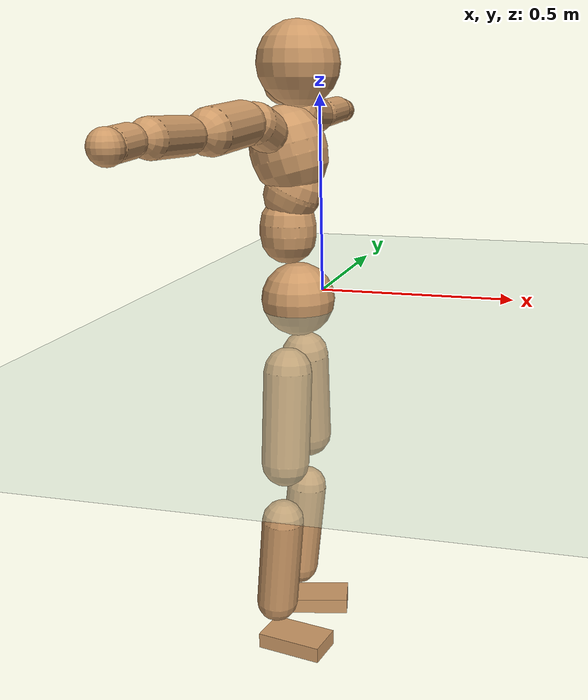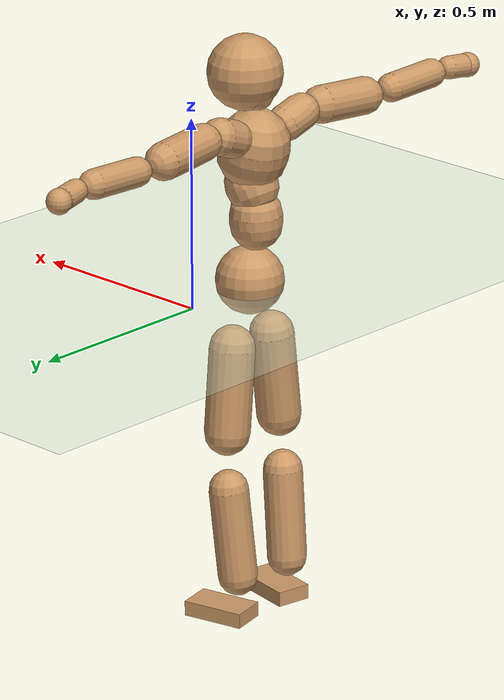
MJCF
<mujoco model="humanoid">
  <compiler coordinate="local"/>
  <default>
    <joint damping="0.0" armature="0.01" stiffness="0.0" limited="true"/>
    <geom conaffinity="1" condim="3" contype="7" margin="0.001" rgba="0.8 0.6 .4 1"/>
  </default>
  <asset>
    <texture type="skybox" builtin="gradient" rgb1=".4 .5 .6" rgb2="0 0 0" width="100" height="100"/>
    <texture builtin="flat" height="1278" mark="cross" markrgb="1 1 1" name="texgeom" random="0.01" rgb1="0.8 0.6 0.4" rgb2="0.8 0.6 0.4" type="cube" width="127"/>
    <texture builtin="checker" height="100" name="texplane" rgb1="0 0 0" rgb2="0.8 0.8 0.8" type="2d" width="100"/>
    <material name="MatPlane" reflectance="0.5" shininess="1" specular="1" texrepeat="60 60" texture="texplane"/>
    <material name="geom" texture="texgeom" texuniform="true"/>
  </asset>
  <worldbody>
    <light cutoff="100" diffuse="1 1 1" dir="-0 0 -1.3" directional="true" exponent="1" pos="0 0 1.3" specular=".1 .1 .1"/>
    <geom conaffinity="1" condim="3" name="floor" pos="0 0 0" rgba="0.8 0.9 0.8 1" size="100 100 .2" type="plane" material="MatPlane"/>
    <body name="Pelvis" pos="-0.0014 -0.2076 0.0245">
      <freejoint name="Pelvis"/>
      <geom type="sphere" contype="1" conaffinity="1" density="500" size="0.0891" pos="0.0000 0.0000 0.0000" name="Pelvis"/>
      <body name="L_Hip" pos="-0.0083 0.0674 -0.0882">
        <joint name="L_Hip_x" type="hinge" pos="0 0 0" axis="1 0 0" stiffness="800" damping="80" armature="0.02" range="-180.0000 180.0000"/>
        <joint name="L_Hip_y" type="hinge" pos="0 0 0" axis="0 1 0" stiffness="800" damping="80" armature="0.02" range="-180.0000 180.0000"/>
        <joint name="L_Hip_z" type="hinge" pos="0 0 0" axis="0 0 1" stiffness="800" damping="80" armature="0.02" range="-180.0000 180.0000"/>
        <geom type="capsule" contype="1" conaffinity="1" density="500" fromto="-0.0006 0.0070 -0.0748 -0.0024 0.0280 -0.2994" size="0.0593" name="L_Hip"/>
        <body name="L_Knee" pos="-0.0029 0.0349 -0.3742">
          <joint name="L_Knee_x" type="hinge" pos="0 0 0" axis="1 0 0" stiffness="800" damping="80" armature="0.02" range="-180.0000 180.0000"/>
          <joint name="L_Knee_y" type="hinge" pos="0 0 0" axis="0 1 0" stiffness="800" damping="80" armature="0.02" range="-180.0000 180.0000"/>
          <joint name="L_Knee_z" type="hinge" pos="0 0 0" axis="0 0 1" stiffness="800" damping="80" armature="0.02" range="-180.0000 180.0000"/>
          <geom type="capsule" contype="1" conaffinity="1" density="500" fromto="-0.0083 -0.0024 -0.0785 -0.0334 -0.0098 -0.3139" size="0.0516" name="L_Knee"/>
          <body name="L_Ankle" pos="-0.0417 -0.0122 -0.3924">
            <joint name="L_Ankle_x" type="hinge" pos="0 0 0" axis="1 0 0" stiffness="800" damping="80" armature="0.02" range="-180.0000 180.0000"/>
            <joint name="L_Ankle_y" type="hinge" pos="0 0 0" axis="0 1 0" stiffness="800" damping="80" armature="0.02" range="-180.0000 180.0000"/>
            <joint name="L_Ankle_z" type="hinge" pos="0 0 0" axis="0 0 1" stiffness="800" damping="80" armature="0.02" range="-180.0000 180.0000"/>
            <geom type="box" contype="1" conaffinity="1" density="500" pos="0.0578 0.0129 -0.0276" size="0.0824 0.0462 0.0198" quat="0.9939 0.0000 0.0000 0.1099" name="L_Ankle"/>
            <body name="L_Toe" pos="0.1156 0.0259 -0.0551">
              <joint name="L_Toe_x" type="hinge" pos="0 0 0" axis="1 0 0" stiffness="500" damping="50" armature="0.02" range="-180.0000 180.0000"/>
              <joint name="L_Toe_y" type="hinge" pos="0 0 0" axis="0 1 0" stiffness="500" damping="50" armature="0.02" range="-180.0000 180.0000"/>
              <joint name="L_Toe_z" type="hinge" pos="0 0 0" axis="0 0 1" stiffness="500" damping="50" armature="0.02" range="-180.0000 180.0000"/>
              <geom type="box" contype="1" conaffinity="1" density="500" pos="0.0000 0.0000 0.0272" size="0.0009 0.0023 0.001" quat="0.9932 0.0000 0.0000 0.1161" name="L_Toe"/>
            </body>
          </body>
        </body>
      </body>
      <body name="R_Hip" pos="-0.0057 -0.0653 -0.0873">
        <joint name="R_Hip_x" type="hinge" pos="0 0 0" axis="1 0 0" stiffness="800" damping="80" armature="0.02" range="-180.0000 180.0000"/>
        <joint name="R_Hip_y" type="hinge" pos="0 0 0" axis="0 1 0" stiffness="800" damping="80" armature="0.02" range="-180.0000 180.0000"/>
        <joint name="R_Hip_z" type="hinge" pos="0 0 0" axis="0 0 1" stiffness="800" damping="80" armature="0.02" range="-180.0000 180.0000"/>
        <geom type="capsule" contype="1" conaffinity="1" density="500" fromto="-0.0013 -0.0078 -0.0760 -0.0054 -0.0313 -0.3040" size="0.0584" name="R_Hip"/>
        <body name="R_Knee" pos="-0.0067 -0.0392 -0.38">
          <joint name="R_Knee_x" type="hinge" pos="0 0 0" axis="1 0 0" stiffness="800" damping="80" armature="0.02" range="-180.0000 180.0000"/>
          <joint name="R_Knee_y" type="hinge" pos="0 0 0" axis="0 1 0" stiffness="800" damping="80" armature="0.02" range="-180.0000 180.0000"/>
          <joint name="R_Knee_z" type="hinge" pos="0 0 0" axis="0 0 1" stiffness="800" damping="80" armature="0.02" range="-180.0000 180.0000"/>
          <geom type="capsule" contype="1" conaffinity="1" density="500" fromto="-0.0080 0.0029 -0.0785 -0.0322 0.0117 -0.3138" size="0.0519" name="R_Knee"/>
          <body name="R_Ankle" pos="-0.0402 0.0146 -0.3923">
            <joint name="R_Ankle_x" type="hinge" pos="0 0 0" axis="1 0 0" stiffness="800" damping="80" armature="0.02" range="-180.0000 180.0000"/>
            <joint name="R_Ankle_y" type="hinge" pos="0 0 0" axis="0 1 0" stiffness="800" damping="80" armature="0.02" range="-180.0000 180.0000"/>
            <joint name="R_Ankle_z" type="hinge" pos="0 0 0" axis="0 0 1" stiffness="800" damping="80" armature="0.02" range="-180.0000 180.0000"/>
            <geom type="box" contype="1" conaffinity="1" density="500" pos="0.0597 -0.0112 -0.0236" size="0.0842 0.046 0.0198" quat="0.9957 0.0000 0.0000 -0.0927" name="R_Ankle"/>
            <body name="R_Toe" pos="0.1194 -0.0224 -0.0472">
              <joint name="R_Toe_x" type="hinge" pos="0 0 0" axis="1 0 0" stiffness="500" damping="50" armature="0.02" range="-180.0000 180.0000"/>
              <joint name="R_Toe_y" type="hinge" pos="0 0 0" axis="0 1 0" stiffness="500" damping="50" armature="0.02" range="-180.0000 180.0000"/>
              <joint name="R_Toe_z" type="hinge" pos="0 0 0" axis="0 0 1" stiffness="500" damping="50" armature="0.02" range="-180.0000 180.0000"/>
              <geom type="box" contype="1" conaffinity="1" density="500" pos="0.0000 0.0000 0.0251" size="0.0009 0.0023 0.0011" quat="0.9965 0.0000 0.0000 -0.0832" name="R_Toe"/>
            </body>
          </body>
        </body>
      </body>
      <body name="Torso" pos="-0.0216 -0.0025 0.103">
        <joint name="Torso_x" type="hinge" pos="0 0 0" axis="1 0 0" stiffness="1000" damping="100" armature="0.02" range="-180.0000 180.0000"/>
        <joint name="Torso_y" type="hinge" pos="0 0 0" axis="0 1 0" stiffness="1000" damping="100" armature="0.02" range="-180.0000 180.0000"/>
        <joint name="Torso_z" type="hinge" pos="0 0 0" axis="0 0 1" stiffness="1000" damping="100" armature="0.02" range="-180.0000 180.0000"/>
        <geom type="capsule" contype="1" conaffinity="1" density="500" fromto="0.0004 0.0027 0.0773 0.0003 0.0018 0.0515" size="0.0679" name="Torso"/>
        <body name="Spine" pos="0.0007 0.0045 0.1289">
          <joint name="Spine_x" type="hinge" pos="0 0 0" axis="1 0 0" stiffness="1000" damping="100" armature="0.02" range="-180.0000 180.0000"/>
          <joint name="Spine_y" type="hinge" pos="0 0 0" axis="0 1 0" stiffness="1000" damping="100" armature="0.02" range="-180.0000 180.0000"/>
          <joint name="Spine_z" type="hinge" pos="0 0 0" axis="0 0 1" stiffness="1000" damping="100" armature="0.02" range="-180.0000 180.0000"/>
          <geom type="capsule" contype="1" conaffinity="1" density="500" fromto="0.0144 0.0010 0.0295 0.0096 0.0007 0.0197" size="0.0682" name="Spine"/>
          <body name="Chest" pos="0.024 0.0017 0.0492">
            <joint name="Chest_x" type="hinge" pos="0 0 0" axis="1 0 0" stiffness="1000" damping="100" armature="0.02" range="-180.0000 180.0000"/>
            <joint name="Chest_y" type="hinge" pos="0 0 0" axis="0 1 0" stiffness="1000" damping="100" armature="0.02" range="-180.0000 180.0000"/>
            <joint name="Chest_z" type="hinge" pos="0 0 0" axis="0 0 1" stiffness="1000" damping="100" armature="0.02" range="-180.0000 180.0000"/>
            <geom type="capsule" contype="1" conaffinity="1" density="500" fromto="-0.0227 -0.0010 0.0865 -0.0151 -0.0007 0.0576" size="0.091" name="Chest"/>
            <body name="Neck" pos="-0.0421 -0.0026 0.2036">
              <joint name="Neck_x" type="hinge" pos="0 0 0" axis="1 0 0" stiffness="500" damping="50" armature="0.02" range="-180.0000 180.0000"/>
              <joint name="Neck_y" type="hinge" pos="0 0 0" axis="0 1 0" stiffness="500" damping="50" armature="0.02" range="-180.0000 180.0000"/>
              <joint name="Neck_z" type="hinge" pos="0 0 0" axis="0 0 1" stiffness="500" damping="50" armature="0.02" range="-180.0000 180.0000"/>
              <geom type="capsule" contype="1" conaffinity="1" density="500" fromto="0.0099 0.0010 0.0126 0.0395 0.0039 0.0503" size="0.0408" name="Neck"/>
              <body name="Head" pos="0.0494 0.0048 0.0629">
                <joint name="Head_x" type="hinge" pos="0 0 0" axis="1 0 0" stiffness="500" damping="50" armature="0.02" range="-180.0000 180.0000"/>
                <joint name="Head_y" type="hinge" pos="0 0 0" axis="0 1 0" stiffness="500" damping="50" armature="0.02" range="-180.0000 180.0000"/>
                <joint name="Head_z" type="hinge" pos="0 0 0" axis="0 0 1" stiffness="500" damping="50" armature="0.02" range="-180.0000 180.0000"/>
                <geom type="sphere" contype="1" conaffinity="1" density="500" size="0.0970" pos="0.0000 0.0000 0.0000" name="Head"/>
              </body>
            </body>
            <body name="L_Thorax" pos="-0.0334 0.0734 0.1156">
              <joint name="L_Thorax_x" type="hinge" pos="0 0 0" axis="1 0 0" stiffness="500" damping="50" armature="0.02" range="-180.0000 180.0000"/>
              <joint name="L_Thorax_y" type="hinge" pos="0 0 0" axis="0 1 0" stiffness="500" damping="50" armature="0.02" range="-180.0000 180.0000"/>
              <joint name="L_Thorax_z" type="hinge" pos="0 0 0" axis="0 0 1" stiffness="500" damping="50" armature="0.02" range="-180.0000 180.0000"/>
              <geom type="capsule" contype="1" conaffinity="1" density="500" fromto="-0.0013 0.0169 0.0062 -0.0053 0.0677 0.0248" size="0.0485" name="L_Thorax"/>
              <body name="L_Shoulder" pos="-0.0066 0.0847 0.031">
                <joint name="L_Shoulder_x" type="hinge" pos="0 0 0" axis="1 0 0" stiffness="500" damping="50" armature="0.02" range="-720.0000 720.0000"/>
                <joint name="L_Shoulder_y" type="hinge" pos="0 0 0" axis="0 1 0" stiffness="500" damping="50" armature="0.02" range="-720.0000 720.0000"/>
                <joint name="L_Shoulder_z" type="hinge" pos="0 0 0" axis="0 0 1" stiffness="500" damping="50" armature="0.02" range="-720.0000 720.0000"/>
                <geom type="capsule" contype="1" conaffinity="1" density="500" fromto="-0.0052 0.0507 -0.0026 -0.0210 0.2029 -0.0104" size="0.0481" name="L_Shoulder"/>
                <body name="L_Elbow" pos="-0.0262 0.2537 -0.0131">
                  <joint name="L_Elbow_x" type="hinge" pos="0 0 0" axis="1 0 0" stiffness="500" damping="50" armature="0.02" range="-720.0000 720.0000"/>
                  <joint name="L_Elbow_y" type="hinge" pos="0 0 0" axis="0 1 0" stiffness="500" damping="50" armature="0.02" range="-720.0000 720.0000"/>
                  <joint name="L_Elbow_z" type="hinge" pos="0 0 0" axis="0 0 1" stiffness="500" damping="50" armature="0.02" range="-720.0000 720.0000"/>
                  <geom type="capsule" contype="1" conaffinity="1" density="500" fromto="-0.0003 0.0486 0.0018 -0.0012 0.1943 0.0071" size="0.0378" name="L_Elbow"/>
                  <body name="L_Wrist" pos="-0.0015 0.2428 0.0089">
                    <joint name="L_Wrist_x" type="hinge" pos="0 0 0" axis="1 0 0" stiffness="300" damping="30" armature="0.02" range="-180.0000 180.0000"/>
                    <joint name="L_Wrist_y" type="hinge" pos="0 0 0" axis="0 1 0" stiffness="300" damping="30" armature="0.02" range="-180.0000 180.0000"/>
                    <joint name="L_Wrist_z" type="hinge" pos="0 0 0" axis="0 0 1" stiffness="300" damping="30" armature="0.02" range="-180.0000 180.0000"/>
                    <geom type="capsule" contype="1" conaffinity="1" density="500" fromto="-0.0028 0.0161 -0.0018 -0.0112 0.0643 -0.0071" size="0.0302" name="L_Wrist"/>
                    <body name="L_Hand" pos="-0.014 0.0804 -0.0088">
                      <joint name="L_Hand_x" type="hinge" pos="0 0 0" axis="1 0 0" stiffness="300" damping="30" armature="0.02" range="-180.0000 180.0000"/>
                      <joint name="L_Hand_y" type="hinge" pos="0 0 0" axis="0 1 0" stiffness="300" damping="30" armature="0.02" range="-180.0000 180.0000"/>
                      <joint name="L_Hand_z" type="hinge" pos="0 0 0" axis="0 0 1" stiffness="300" damping="30" armature="0.02" range="-180.0000 180.0000"/>
                      <geom type="sphere" contype="1" conaffinity="1" density="500" size="0.0323" pos="0.0000 0.0000 0.0000" name="L_Hand"/>
                    </body>
                  </body>
                </body>
              </body>
            </body>
            <body name="R_Thorax" pos="-0.0378 -0.0759 0.1132">
              <joint name="R_Thorax_x" type="hinge" pos="0 0 0" axis="1 0 0" stiffness="500" damping="50" armature="0.02" range="-180.0000 180.0000"/>
              <joint name="R_Thorax_y" type="hinge" pos="0 0 0" axis="0 1 0" stiffness="500" damping="50" armature="0.02" range="-180.0000 180.0000"/>
              <joint name="R_Thorax_z" type="hinge" pos="0 0 0" axis="0 0 1" stiffness="500" damping="50" armature="0.02" range="-180.0000 180.0000"/>
              <geom type="capsule" contype="1" conaffinity="1" density="500" fromto="-0.0016 -0.0178 0.0065 -0.0065 -0.0714 0.0261" size="0.0477" name="R_Thorax"/>
              <body name="R_Shoulder" pos="-0.0081 -0.0892 0.0326">
                <joint name="R_Shoulder_x" type="hinge" pos="0 0 0" axis="1 0 0" stiffness="500" damping="50" armature="0.02" range="-720.0000 720.0000"/>
                <joint name="R_Shoulder_y" type="hinge" pos="0 0 0" axis="0 1 0" stiffness="500" damping="50" armature="0.02" range="-720.0000 720.0000"/>
                <joint name="R_Shoulder_z" type="hinge" pos="0 0 0" axis="0 0 1" stiffness="500" damping="50" armature="0.02" range="-720.0000 720.0000"/>
                <geom type="capsule" contype="1" conaffinity="1" density="500" fromto="-0.0038 -0.0496 -0.0028 -0.0154 -0.1983 -0.0112" size="0.0495" name="R_Shoulder"/>
                <body name="R_Elbow" pos="-0.0192 -0.2478 -0.014">
                  <joint name="R_Elbow_x" type="hinge" pos="0 0 0" axis="1 0 0" stiffness="500" damping="50" armature="0.02" range="-720.0000 720.0000"/>
                  <joint name="R_Elbow_y" type="hinge" pos="0 0 0" axis="0 1 0" stiffness="500" damping="50" armature="0.02" range="-720.0000 720.0000"/>
                  <joint name="R_Elbow_z" type="hinge" pos="0 0 0" axis="0 0 1" stiffness="500" damping="50" armature="0.02" range="-720.0000 720.0000"/>
                  <geom type="capsule" contype="1" conaffinity="1" density="500" fromto="-0.0011 -0.0500 0.0016 -0.0043 -0.2000 0.0066" size="0.038" name="R_Elbow"/>
                  <body name="R_Wrist" pos="-0.0054 -0.25 0.0082">
                    <joint name="R_Wrist_x" type="hinge" pos="0 0 0" axis="1 0 0" stiffness="300" damping="30" armature="0.02" range="-180.0000 180.0000"/>
                    <joint name="R_Wrist_y" type="hinge" pos="0 0 0" axis="0 1 0" stiffness="300" damping="30" armature="0.02" range="-180.0000 180.0000"/>
                    <joint name="R_Wrist_z" type="hinge" pos="0 0 0" axis="0 0 1" stiffness="300" damping="30" armature="0.02" range="-180.0000 180.0000"/>
                    <geom type="capsule" contype="1" conaffinity="1" density="500" fromto="-0.0020 -0.0162 -0.0013 -0.0081 -0.0649 -0.0052" size="0.0309" name="R_Wrist"/>
                    <body name="R_Hand" pos="-0.0102 -0.0811 -0.0066">
                      <joint name="R_Hand_x" type="hinge" pos="0 0 0" axis="1 0 0" stiffness="300" damping="30" armature="0.02" range="-180.0000 180.0000"/>
                      <joint name="R_Hand_y" type="hinge" pos="0 0 0" axis="0 1 0" stiffness="300" damping="30" armature="0.02" range="-180.0000 180.0000"/>
                      <joint name="R_Hand_z" type="hinge" pos="0 0 0" axis="0 0 1" stiffness="300" damping="30" armature="0.02" range="-180.0000 180.0000"/>
                      <geom type="sphere" contype="1" conaffinity="1" density="500" size="0.0325" pos="0.0000 0.0000 0.0000" name="R_Hand"/>
                    </body>
                  </body>
                </body>
              </body>
            </body>
          </body>
        </body>
      </body>
    </body>
  </worldbody>
  <actuator>
    <motor name="L_Hip_x" joint="L_Hip_x" gear="500"/>
    <motor name="L_Hip_y" joint="L_Hip_y" gear="500"/>
    <motor name="L_Hip_z" joint="L_Hip_z" gear="500"/>
    <motor name="L_Knee_x" joint="L_Knee_x" gear="500"/>
    <motor name="L_Knee_y" joint="L_Knee_y" gear="500"/>
    <motor name="L_Knee_z" joint="L_Knee_z" gear="500"/>
    <motor name="L_Ankle_x" joint="L_Ankle_x" gear="500"/>
    <motor name="L_Ankle_y" joint="L_Ankle_y" gear="500"/>
    <motor name="L_Ankle_z" joint="L_Ankle_z" gear="500"/>
    <motor name="L_Toe_x" joint="L_Toe_x" gear="500"/>
    <motor name="L_Toe_y" joint="L_Toe_y" gear="500"/>
    <motor name="L_Toe_z" joint="L_Toe_z" gear="500"/>
    <motor name="R_Hip_x" joint="R_Hip_x" gear="500"/>
    <motor name="R_Hip_y" joint="R_Hip_y" gear="500"/>
    <motor name="R_Hip_z" joint="R_Hip_z" gear="500"/>
    <motor name="R_Knee_x" joint="R_Knee_x" gear="500"/>
    <motor name="R_Knee_y" joint="R_Knee_y" gear="500"/>
    <motor name="R_Knee_z" joint="R_Knee_z" gear="500"/>
    <motor name="R_Ankle_x" joint="R_Ankle_x" gear="500"/>
    <motor name="R_Ankle_y" joint="R_Ankle_y" gear="500"/>
    <motor name="R_Ankle_z" joint="R_Ankle_z" gear="500"/>
    <motor name="R_Toe_x" joint="R_Toe_x" gear="500"/>
    <motor name="R_Toe_y" joint="R_Toe_y" gear="500"/>
    <motor name="R_Toe_z" joint="R_Toe_z" gear="500"/>
    <motor name="Torso_x" joint="Torso_x" gear="500"/>
    <motor name="Torso_y" joint="Torso_y" gear="500"/>
    <motor name="Torso_z" joint="Torso_z" gear="500"/>
    <motor name="Spine_x" joint="Spine_x" gear="500"/>
    <motor name="Spine_y" joint="Spine_y" gear="500"/>
    <motor name="Spine_z" joint="Spine_z" gear="500"/>
    <motor name="Chest_x" joint="Chest_x" gear="500"/>
    <motor name="Chest_y" joint="Chest_y" gear="500"/>
    <motor name="Chest_z" joint="Chest_z" gear="500"/>
    <motor name="Neck_x" joint="Neck_x" gear="500"/>
    <motor name="Neck_y" joint="Neck_y" gear="500"/>
    <motor name="Neck_z" joint="Neck_z" gear="500"/>
    <motor name="Head_x" joint="Head_x" gear="500"/>
    <motor name="Head_y" joint="Head_y" gear="500"/>
    <motor name="Head_z" joint="Head_z" gear="500"/>
    <motor name="L_Thorax_x" joint="L_Thorax_x" gear="500"/>
    <motor name="L_Thorax_y" joint="L_Thorax_y" gear="500"/>
    <motor name="L_Thorax_z" joint="L_Thorax_z" gear="500"/>
    <motor name="L_Shoulder_x" joint="L_Shoulder_x" gear="500"/>
    <motor name="L_Shoulder_y" joint="L_Shoulder_y" gear="500"/>
    <motor name="L_Shoulder_z" joint="L_Shoulder_z" gear="500"/>
    <motor name="L_Elbow_x" joint="L_Elbow_x" gear="500"/>
    <motor name="L_Elbow_y" joint="L_Elbow_y" gear="500"/>
    <motor name="L_Elbow_z" joint="L_Elbow_z" gear="500"/>
    <motor name="L_Wrist_x" joint="L_Wrist_x" gear="500"/>
    <motor name="L_Wrist_y" joint="L_Wrist_y" gear="500"/>
    <motor name="L_Wrist_z" joint="L_Wrist_z" gear="500"/>
    <motor name="L_Hand_x" joint="L_Hand_x" gear="500"/>
    <motor name="L_Hand_y" joint="L_Hand_y" gear="500"/>
    <motor name="L_Hand_z" joint="L_Hand_z" gear="500"/>
    <motor name="R_Thorax_x" joint="R_Thorax_x" gear="500"/>
    <motor name="R_Thorax_y" joint="R_Thorax_y" gear="500"/>
    <motor name="R_Thorax_z" joint="R_Thorax_z" gear="500"/>
    <motor name="R_Shoulder_x" joint="R_Shoulder_x" gear="500"/>
    <motor name="R_Shoulder_y" joint="R_Shoulder_y" gear="500"/>
    <motor name="R_Shoulder_z" joint="R_Shoulder_z" gear="500"/>
    <motor name="R_Elbow_x" joint="R_Elbow_x" gear="500"/>
    <motor name="R_Elbow_y" joint="R_Elbow_y" gear="500"/>
    <motor name="R_Elbow_z" joint="R_Elbow_z" gear="500"/>
    <motor name="R_Wrist_x" joint="R_Wrist_x" gear="500"/>
    <motor name="R_Wrist_y" joint="R_Wrist_y" gear="500"/>
    <motor name="R_Wrist_z" joint="R_Wrist_z" gear="500"/>
    <motor name="R_Hand_x" joint="R_Hand_x" gear="500"/>
    <motor name="R_Hand_y" joint="R_Hand_y" gear="500"/>
    <motor name="R_Hand_z" joint="R_Hand_z" gear="500"/>
  </actuator>
  <contact>
    <exclude body1="Torso" body2="Chest"/>
    <exclude body1="Head" body2="Chest"/>
    <exclude body1="R_Knee" body2="R_Toe"/>
    <exclude body1="R_Knee" body2="L_Ankle"/>
    <exclude body1="R_Knee" body2="L_Toe"/>
    <exclude body1="L_Knee" body2="L_Toe"/>
    <exclude body1="L_Knee" body2="R_Ankle"/>
    <exclude body1="L_Knee" body2="R_Toe"/>
    <exclude body1="L_Shoulder" body2="Chest"/>
    <exclude body1="R_Shoulder" body2="Chest"/>
  </contact>
  <sensor/>
  <size njmax="700" nconmax="700"/>
</mujoco>
